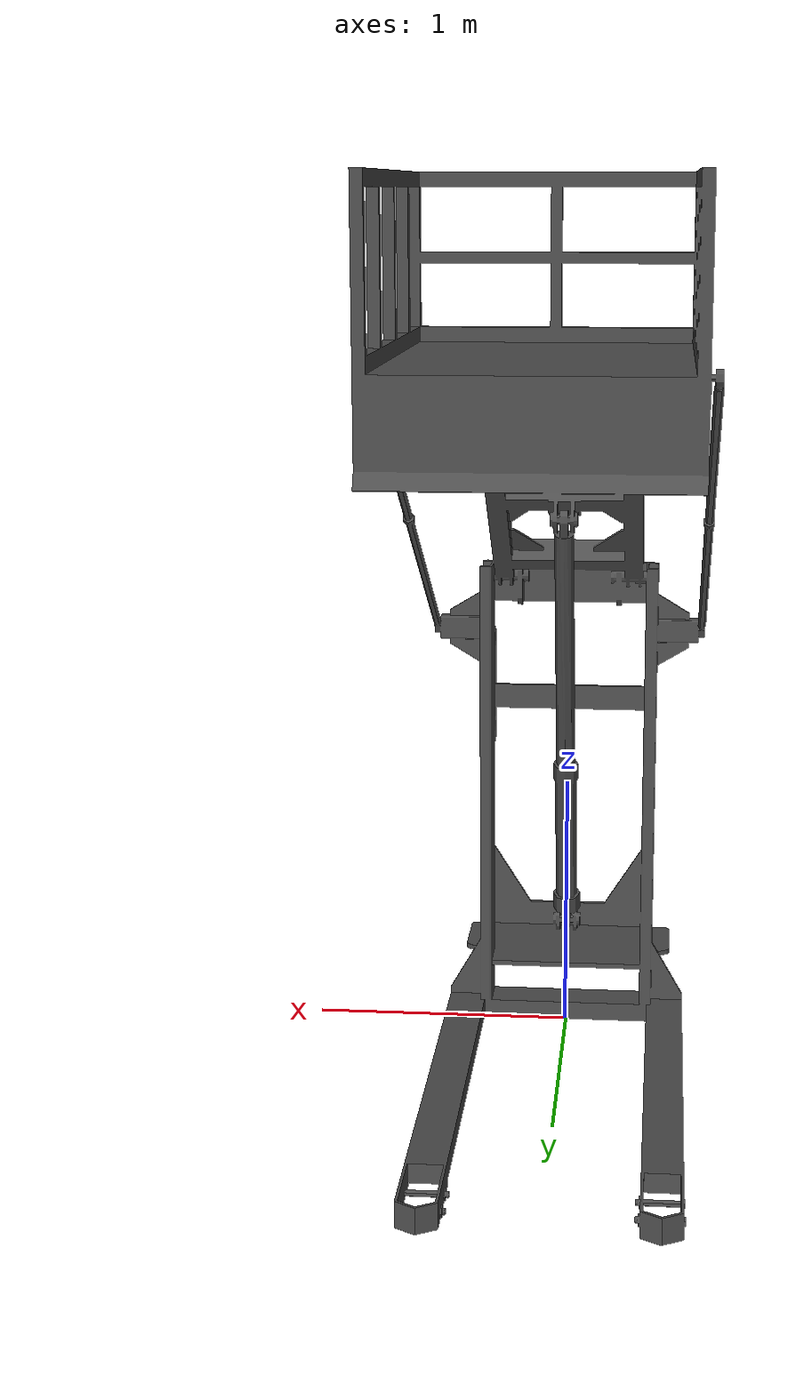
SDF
<?xml version="1.0" ?>
<sdf version="1.5">
  <model name="warehouse_elevator">
    <static>true</static>
    <link name='defaultModel_0::custom_0'>
      <pose>0 0 0 0 0 0</pose>
      <gravity>1</gravity>
      <self_collide>0</self_collide>
      <kinematic>0</kinematic>
      <visual name='custom_0_visual'>
        <pose>0 0 0.1 1.57079 0 0</pose>
        <geometry>
          <mesh>
            <uri>model://warehouse_elevator/warehouse_elevator.dae</uri>
            <scale>0.03 0.03 0.03</scale>
          </mesh>
        </geometry>
        <material>
          <script>
            <uri>file://media/materials/scripts/gazebo.material</uri>
            <name>Gazebo/DarkGrey</name>
          </script>
        </material>
      </visual>
      <collision name='defaultModel_0::custom_0_collision'>
        <geometry>
          <mesh>
            <uri>model://warehouse_elevator/warehouse_elevator.dae</uri>
            <scale>0.03 0.03 0.03</scale>
          </mesh>
        </geometry>
        <pose>0 0 0.1 1.57079 0 0</pose>
      </collision>
    </link>
  </model>
</sdf>
